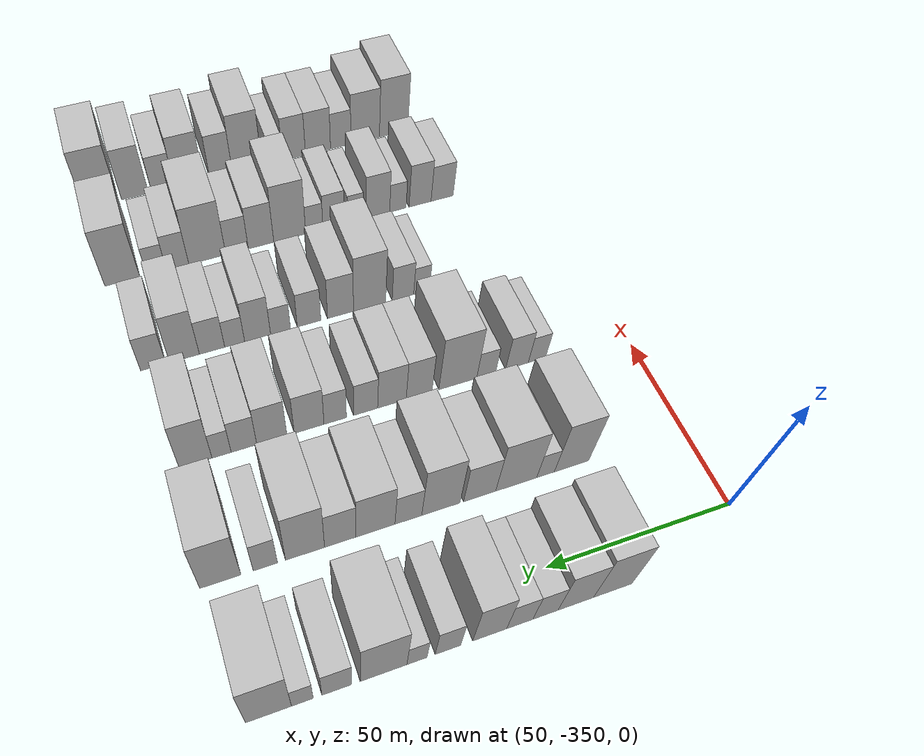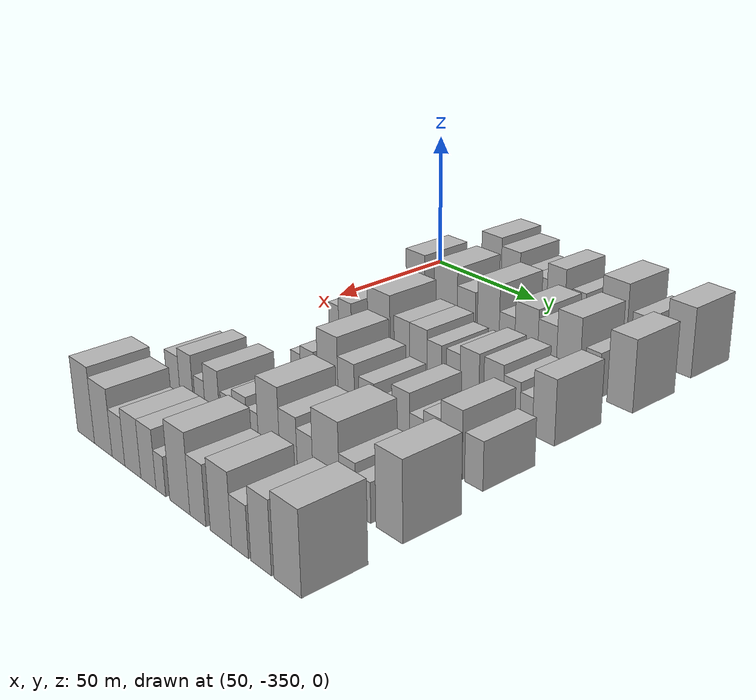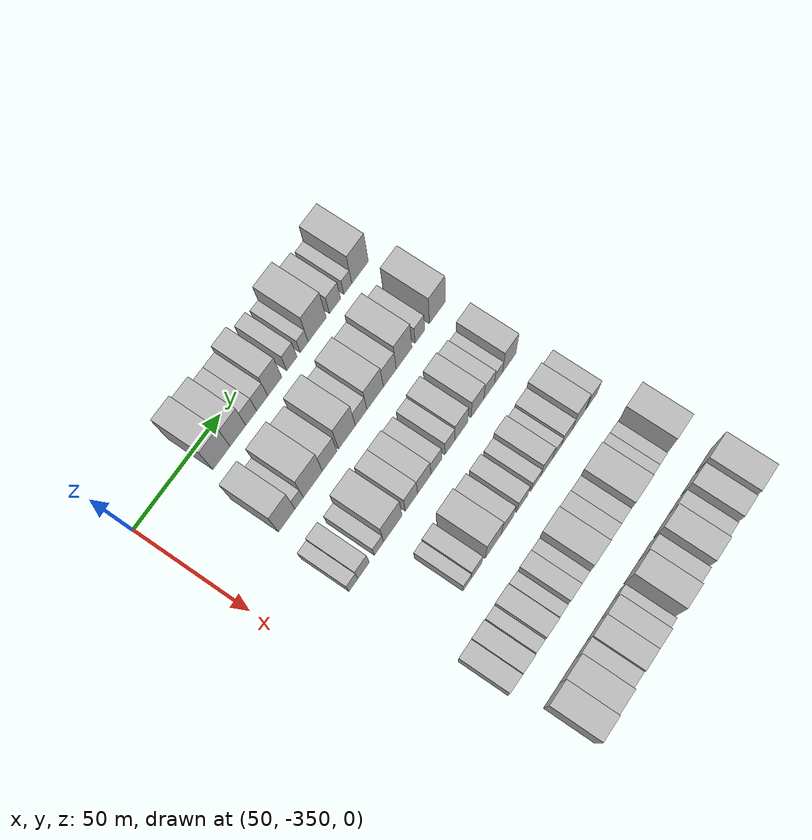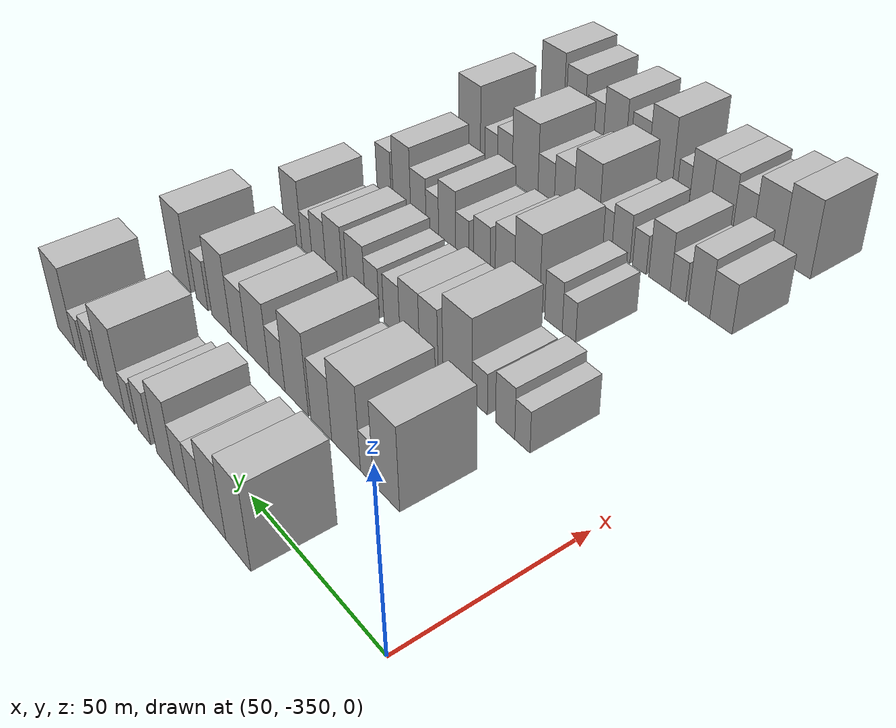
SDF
<sdf version="1.6">
 <world name="default">
  <model name="building_24">
   <static>1</static>
   <pose>50.0000 -312.4057 0 0.000000 0.000000 0.000000</pose>
   <link name="link">
    <pose>0 0 12.00 0 0 0</pose>
    <collision name="collision"><geometry><box><size>20.0000 10.1005 24.0000</size></box></geometry></collision>
    <visual name="visual">
     <cast_shadows>0</cast_shadows>
     <geometry><box><size>20.0000 10.1005 24.0000</size></box></geometry>
     <material>
      <script>
       <uri>model://HANNAS_wall/materials/scripts</uri>
       <uri>model://HANNAS_wall/materials/textures</uri>
       <name>vrc/HANNAS_wall</name>
      </script>
     </material>
    </visual>
   </link>
  </model>
  <model name="building_25">
   <static>1</static>
   <pose>50.0000 -302.7302 0 0.000000 0.000000 0.000000</pose>
   <link name="link">
    <pose>0 0 10.50 0 0 0</pose>
    <collision name="collision"><geometry><box><size>20.0000 9.2506 21.0000</size></box></geometry></collision>
    <visual name="visual">
     <cast_shadows>0</cast_shadows>
     <geometry><box><size>20.0000 9.2506 21.0000</size></box></geometry>
     <material>
      <script>
       <uri>model://HANNAS_wall/materials/scripts</uri>
       <uri>model://HANNAS_wall/materials/textures</uri>
       <name>vrc/HANNAS_wall</name>
      </script>
     </material>
    </visual>
   </link>
  </model>
  <model name="building_26">
   <static>1</static>
   <pose>50.0000 -294.8835 0 0.000000 0.000000 0.000000</pose>
   <link name="link">
    <pose>0 0 7.50 0 0 0</pose>
    <collision name="collision"><geometry><box><size>20.0000 6.4428 15.0000</size></box></geometry></collision>
    <visual name="visual">
     <cast_shadows>0</cast_shadows>
     <geometry><box><size>20.0000 6.4428 15.0000</size></box></geometry>
     <material>
      <script>
       <uri>model://HANNAS_wall/materials/scripts</uri>
       <uri>model://HANNAS_wall/materials/textures</uri>
       <name>vrc/HANNAS_wall</name>
      </script>
     </material>
    </visual>
   </link>
  </model>
  <model name="building_27">
   <static>1</static>
   <pose>50.0000 -288.3654 0 0.000000 0.000000 0.000000</pose>
   <link name="link">
    <pose>0 0 7.50 0 0 0</pose>
    <collision name="collision"><geometry><box><size>20.0000 6.5933 15.0000</size></box></geometry></collision>
    <visual name="visual">
     <cast_shadows>0</cast_shadows>
     <geometry><box><size>20.0000 6.5933 15.0000</size></box></geometry>
     <material>
      <script>
       <uri>model://HANNAS_wall/materials/scripts</uri>
       <uri>model://HANNAS_wall/materials/textures</uri>
       <name>vrc/HANNAS_wall</name>
      </script>
     </material>
    </visual>
   </link>
  </model>
  <model name="building_28">
   <static>1</static>
   <pose>50.0000 -280.8394 0 0.000000 0.000000 0.000000</pose>
   <link name="link">
    <pose>0 0 10.50 0 0 0</pose>
    <collision name="collision"><geometry><box><size>20.0000 8.4586 21.0000</size></box></geometry></collision>
    <visual name="visual">
     <cast_shadows>0</cast_shadows>
     <geometry><box><size>20.0000 8.4586 21.0000</size></box></geometry>
     <material>
      <script>
       <uri>model://HANNAS_wall/materials/scripts</uri>
       <uri>model://HANNAS_wall/materials/textures</uri>
       <name>vrc/HANNAS_wall</name>
      </script>
     </material>
    </visual>
   </link>
  </model>
  <model name="building_29">
   <static>1</static>
   <pose>50.0000 -270.5103 0 0.000000 0.000000 0.000000</pose>
   <link name="link">
    <pose>0 0 7.50 0 0 0</pose>
    <collision name="collision"><geometry><box><size>20.0000 6.1996 15.0000</size></box></geometry></collision>
    <visual name="visual">
     <cast_shadows>0</cast_shadows>
     <geometry><box><size>20.0000 6.1996 15.0000</size></box></geometry>
     <material>
      <script>
       <uri>model://HANNAS_wall/materials/scripts</uri>
       <uri>model://HANNAS_wall/materials/textures</uri>
       <name>vrc/HANNAS_wall</name>
      </script>
     </material>
    </visual>
   </link>
  </model>
  <model name="building_30">
   <static>1</static>
   <pose>50.0000 -262.9905 0 0.000000 0.000000 0.000000</pose>
   <link name="link">
    <pose>0 0 6.00 0 0 0</pose>
    <collision name="collision"><geometry><box><size>20.0000 4.8400 12.0000</size></box></geometry></collision>
    <visual name="visual">
     <cast_shadows>0</cast_shadows>
     <geometry><box><size>20.0000 4.8400 12.0000</size></box></geometry>
     <material>
      <script>
       <uri>model://HANNAS_wall/materials/scripts</uri>
       <uri>model://HANNAS_wall/materials/textures</uri>
       <name>vrc/HANNAS_wall</name>
      </script>
     </material>
    </visual>
   </link>
  </model>
  <model name="building_31">
   <static>1</static>
   <pose>50.0000 -255.0199 0 0.000000 0.000000 0.000000</pose>
   <link name="link">
    <pose>0 0 12.00 0 0 0</pose>
    <collision name="collision"><geometry><box><size>20.0000 11.1011 24.0000</size></box></geometry></collision>
    <visual name="visual">
     <cast_shadows>0</cast_shadows>
     <geometry><box><size>20.0000 11.1011 24.0000</size></box></geometry>
     <material>
      <script>
       <uri>model://HANNAS_wall/materials/scripts</uri>
       <uri>model://HANNAS_wall/materials/textures</uri>
       <name>vrc/HANNAS_wall</name>
      </script>
     </material>
    </visual>
   </link>
  </model>
  <model name="building_32">
   <static>1</static>
   <pose>50.0000 -243.9982 0 0.000000 0.000000 0.000000</pose>
   <link name="link">
    <pose>0 0 7.50 0 0 0</pose>
    <collision name="collision"><geometry><box><size>20.0000 6.9424 15.0000</size></box></geometry></collision>
    <visual name="visual">
     <cast_shadows>0</cast_shadows>
     <geometry><box><size>20.0000 6.9424 15.0000</size></box></geometry>
     <material>
      <script>
       <uri>model://HANNAS_wall/materials/scripts</uri>
       <uri>model://HANNAS_wall/materials/textures</uri>
       <name>vrc/HANNAS_wall</name>
      </script>
     </material>
    </visual>
   </link>
  </model>
  <model name="building_33">
   <static>1</static>
   <pose>50.0000 -236.0353 0 0.000000 0.000000 0.000000</pose>
   <link name="link">
    <pose>0 0 6.00 0 0 0</pose>
    <collision name="collision"><geometry><box><size>20.0000 4.9834 12.0000</size></box></geometry></collision>
    <visual name="visual">
     <cast_shadows>0</cast_shadows>
     <geometry><box><size>20.0000 4.9834 12.0000</size></box></geometry>
     <material>
      <script>
       <uri>model://HANNAS_wall/materials/scripts</uri>
       <uri>model://HANNAS_wall/materials/textures</uri>
       <name>vrc/HANNAS_wall</name>
      </script>
     </material>
    </visual>
   </link>
  </model>
  <model name="building_34">
   <static>1</static>
   <pose>50.0000 -228.3454 0 0.000000 0.000000 0.000000</pose>
   <link name="link">
    <pose>0 0 12.00 0 0 0</pose>
    <collision name="collision"><geometry><box><size>20.0000 10.3963 24.0000</size></box></geometry></collision>
    <visual name="visual">
     <cast_shadows>0</cast_shadows>
     <geometry><box><size>20.0000 10.3963 24.0000</size></box></geometry>
     <material>
      <script>
       <uri>model://HANNAS_wall/materials/scripts</uri>
       <uri>model://HANNAS_wall/materials/textures</uri>
       <name>vrc/HANNAS_wall</name>
      </script>
     </material>
    </visual>
   </link>
  </model>
  <model name="building_143">
   <static>1</static>
   <pose>82.0000 -317.5623 0 0.000000 0.000000 0.000000</pose>
   <link name="link">
    <pose>0 0 12.00 0 0 0</pose>
    <collision name="collision"><geometry><box><size>20.0000 9.7153 24.0000</size></box></geometry></collision>
    <visual name="visual">
     <cast_shadows>0</cast_shadows>
     <geometry><box><size>20.0000 9.7153 24.0000</size></box></geometry>
     <material>
      <script>
       <uri>model://HANNAS_wall/materials/scripts</uri>
       <uri>model://HANNAS_wall/materials/textures</uri>
       <name>vrc/HANNAS_wall</name>
      </script>
     </material>
    </visual>
   </link>
  </model>
  <model name="building_144">
   <static>1</static>
   <pose>82.0000 -310.2401 0 0.000000 0.000000 0.000000</pose>
   <link name="link">
    <pose>0 0 6.00 0 0 0</pose>
    <collision name="collision"><geometry><box><size>20.0000 4.9292 12.0000</size></box></geometry></collision>
    <visual name="visual">
     <cast_shadows>0</cast_shadows>
     <geometry><box><size>20.0000 4.9292 12.0000</size></box></geometry>
     <material>
      <script>
       <uri>model://HANNAS_wall/materials/scripts</uri>
       <uri>model://HANNAS_wall/materials/textures</uri>
       <name>vrc/HANNAS_wall</name>
      </script>
     </material>
    </visual>
   </link>
  </model>
  <model name="building_145">
   <static>1</static>
   <pose>82.0000 -302.0967 0 0.000000 0.000000 0.000000</pose>
   <link name="link">
    <pose>0 0 12.00 0 0 0</pose>
    <collision name="collision"><geometry><box><size>20.0000 11.3575 24.0000</size></box></geometry></collision>
    <visual name="visual">
     <cast_shadows>0</cast_shadows>
     <geometry><box><size>20.0000 11.3575 24.0000</size></box></geometry>
     <material>
      <script>
       <uri>model://HANNAS_wall/materials/scripts</uri>
       <uri>model://HANNAS_wall/materials/textures</uri>
       <name>vrc/HANNAS_wall</name>
      </script>
     </material>
    </visual>
   </link>
  </model>
  <model name="building_146">
   <static>1</static>
   <pose>82.0000 -292.0707 0 0.000000 0.000000 0.000000</pose>
   <link name="link">
    <pose>0 0 9.00 0 0 0</pose>
    <collision name="collision"><geometry><box><size>20.0000 8.6945 18.0000</size></box></geometry></collision>
    <visual name="visual">
     <cast_shadows>0</cast_shadows>
     <geometry><box><size>20.0000 8.6945 18.0000</size></box></geometry>
     <material>
      <script>
       <uri>model://HANNAS_wall/materials/scripts</uri>
       <uri>model://HANNAS_wall/materials/textures</uri>
       <name>vrc/HANNAS_wall</name>
      </script>
     </material>
    </visual>
   </link>
  </model>
  <model name="building_147">
   <static>1</static>
   <pose>82.0000 -281.6274 0 0.000000 0.000000 0.000000</pose>
   <link name="link">
    <pose>0 0 12.00 0 0 0</pose>
    <collision name="collision"><geometry><box><size>20.0000 10.1922 24.0000</size></box></geometry></collision>
    <visual name="visual">
     <cast_shadows>0</cast_shadows>
     <geometry><box><size>20.0000 10.1922 24.0000</size></box></geometry>
     <material>
      <script>
       <uri>model://HANNAS_wall/materials/scripts</uri>
       <uri>model://HANNAS_wall/materials/textures</uri>
       <name>vrc/HANNAS_wall</name>
      </script>
     </material>
    </visual>
   </link>
  </model>
  <model name="building_148">
   <static>1</static>
   <pose>82.0000 -272.9919 0 0.000000 0.000000 0.000000</pose>
   <link name="link">
    <pose>0 0 7.50 0 0 0</pose>
    <collision name="collision"><geometry><box><size>20.0000 7.0788 15.0000</size></box></geometry></collision>
    <visual name="visual">
     <cast_shadows>0</cast_shadows>
     <geometry><box><size>20.0000 7.0788 15.0000</size></box></geometry>
     <material>
      <script>
       <uri>model://HANNAS_wall/materials/scripts</uri>
       <uri>model://HANNAS_wall/materials/textures</uri>
       <name>vrc/HANNAS_wall</name>
      </script>
     </material>
    </visual>
   </link>
  </model>
  <model name="building_149">
   <static>1</static>
   <pose>82.0000 -264.3902 0 0.000000 0.000000 0.000000</pose>
   <link name="link">
    <pose>0 0 10.50 0 0 0</pose>
    <collision name="collision"><geometry><box><size>20.0000 10.1245 21.0000</size></box></geometry></collision>
    <visual name="visual">
     <cast_shadows>0</cast_shadows>
     <geometry><box><size>20.0000 10.1245 21.0000</size></box></geometry>
     <material>
      <script>
       <uri>model://HANNAS_wall/materials/scripts</uri>
       <uri>model://HANNAS_wall/materials/textures</uri>
       <name>vrc/HANNAS_wall</name>
      </script>
     </material>
    </visual>
   </link>
  </model>
  <model name="building_150">
   <static>1</static>
   <pose>82.0000 -255.3238 0 0.000000 0.000000 0.000000</pose>
   <link name="link">
    <pose>0 0 9.00 0 0 0</pose>
    <collision name="collision"><geometry><box><size>20.0000 8.0083 18.0000</size></box></geometry></collision>
    <visual name="visual">
     <cast_shadows>0</cast_shadows>
     <geometry><box><size>20.0000 8.0083 18.0000</size></box></geometry>
     <material>
      <script>
       <uri>model://HANNAS_wall/materials/scripts</uri>
       <uri>model://HANNAS_wall/materials/textures</uri>
       <name>vrc/HANNAS_wall</name>
      </script>
     </material>
    </visual>
   </link>
  </model>
  <model name="building_151">
   <static>1</static>
   <pose>82.0000 -246.4060 0 0.000000 0.000000 0.000000</pose>
   <link name="link">
    <pose>0 0 12.00 0 0 0</pose>
    <collision name="collision"><geometry><box><size>20.0000 9.8274 24.0000</size></box></geometry></collision>
    <visual name="visual">
     <cast_shadows>0</cast_shadows>
     <geometry><box><size>20.0000 9.8274 24.0000</size></box></geometry>
     <material>
      <script>
       <uri>model://HANNAS_wall/materials/scripts</uri>
       <uri>model://HANNAS_wall/materials/textures</uri>
       <name>vrc/HANNAS_wall</name>
      </script>
     </material>
    </visual>
   </link>
  </model>
  <model name="building_152">
   <static>1</static>
   <pose>82.0000 -236.4769 0 0.000000 0.000000 0.000000</pose>
   <link name="link">
    <pose>0 0 7.50 0 0 0</pose>
    <collision name="collision"><geometry><box><size>20.0000 6.0309 15.0000</size></box></geometry></collision>
    <visual name="visual">
     <cast_shadows>0</cast_shadows>
     <geometry><box><size>20.0000 6.0309 15.0000</size></box></geometry>
     <material>
      <script>
       <uri>model://HANNAS_wall/materials/scripts</uri>
       <uri>model://HANNAS_wall/materials/textures</uri>
       <name>vrc/HANNAS_wall</name>
      </script>
     </material>
    </visual>
   </link>
  </model>
  <model name="building_153">
   <static>1</static>
   <pose>82.0000 -225.4498 0 0.000000 0.000000 0.000000</pose>
   <link name="link">
    <pose>0 0 12.00 0 0 0</pose>
    <collision name="collision"><geometry><box><size>20.0000 10.0232 24.0000</size></box></geometry></collision>
    <visual name="visual">
     <cast_shadows>0</cast_shadows>
     <geometry><box><size>20.0000 10.0232 24.0000</size></box></geometry>
     <material>
      <script>
       <uri>model://HANNAS_wall/materials/scripts</uri>
       <uri>model://HANNAS_wall/materials/textures</uri>
       <name>vrc/HANNAS_wall</name>
      </script>
     </material>
    </visual>
   </link>
  </model>
  <model name="building_265">
   <static>1</static>
   <pose>114.0000 -322.9543 0 0.000000 0.000000 0.000000</pose>
   <link name="link">
    <pose>0 0 6.00 0 0 0</pose>
    <collision name="collision"><geometry><box><size>20.0000 5.2544 12.0000</size></box></geometry></collision>
    <visual name="visual">
     <cast_shadows>0</cast_shadows>
     <geometry><box><size>20.0000 5.2544 12.0000</size></box></geometry>
     <material>
      <script>
       <uri>model://HANNAS_wall/materials/scripts</uri>
       <uri>model://HANNAS_wall/materials/textures</uri>
       <name>vrc/HANNAS_wall</name>
      </script>
     </material>
    </visual>
   </link>
  </model>
  <model name="building_266">
   <static>1</static>
   <pose>114.0000 -316.9346 0 0.000000 0.000000 0.000000</pose>
   <link name="link">
    <pose>0 0 7.50 0 0 0</pose>
    <collision name="collision"><geometry><box><size>20.0000 6.7850 15.0000</size></box></geometry></collision>
    <visual name="visual">
     <cast_shadows>0</cast_shadows>
     <geometry><box><size>20.0000 6.7850 15.0000</size></box></geometry>
     <material>
      <script>
       <uri>model://HANNAS_wall/materials/scripts</uri>
       <uri>model://HANNAS_wall/materials/textures</uri>
       <name>vrc/HANNAS_wall</name>
      </script>
     </material>
    </visual>
   </link>
  </model>
  <model name="building_267">
   <static>1</static>
   <pose>114.0000 -307.7414 0 0.000000 0.000000 0.000000</pose>
   <link name="link">
    <pose>0 0 6.00 0 0 0</pose>
    <collision name="collision"><geometry><box><size>20.0000 5.6015 12.0000</size></box></geometry></collision>
    <visual name="visual">
     <cast_shadows>0</cast_shadows>
     <geometry><box><size>20.0000 5.6015 12.0000</size></box></geometry>
     <material>
      <script>
       <uri>model://HANNAS_wall/materials/scripts</uri>
       <uri>model://HANNAS_wall/materials/textures</uri>
       <name>vrc/HANNAS_wall</name>
      </script>
     </material>
    </visual>
   </link>
  </model>
  <model name="building_268">
   <static>1</static>
   <pose>114.0000 -299.3975 0 0.000000 0.000000 0.000000</pose>
   <link name="link">
    <pose>0 0 12.00 0 0 0</pose>
    <collision name="collision"><geometry><box><size>20.0000 11.0861 24.0000</size></box></geometry></collision>
    <visual name="visual">
     <cast_shadows>0</cast_shadows>
     <geometry><box><size>20.0000 11.0861 24.0000</size></box></geometry>
     <material>
      <script>
       <uri>model://HANNAS_wall/materials/scripts</uri>
       <uri>model://HANNAS_wall/materials/textures</uri>
       <name>vrc/HANNAS_wall</name>
      </script>
     </material>
    </visual>
   </link>
  </model>
  <model name="building_269">
   <static>1</static>
   <pose>114.0000 -288.1318 0 0.000000 0.000000 0.000000</pose>
   <link name="link">
    <pose>0 0 9.00 0 0 0</pose>
    <collision name="collision"><geometry><box><size>20.0000 7.4454 18.0000</size></box></geometry></collision>
    <visual name="visual">
     <cast_shadows>0</cast_shadows>
     <geometry><box><size>20.0000 7.4454 18.0000</size></box></geometry>
     <material>
      <script>
       <uri>model://HANNAS_wall/materials/scripts</uri>
       <uri>model://HANNAS_wall/materials/textures</uri>
       <name>vrc/HANNAS_wall</name>
      </script>
     </material>
    </visual>
   </link>
  </model>
  <model name="building_270">
   <static>1</static>
   <pose>114.0000 -280.3580 0 0.000000 0.000000 0.000000</pose>
   <link name="link">
    <pose>0 0 9.00 0 0 0</pose>
    <collision name="collision"><geometry><box><size>20.0000 8.1021 18.0000</size></box></geometry></collision>
    <visual name="visual">
     <cast_shadows>0</cast_shadows>
     <geometry><box><size>20.0000 8.1021 18.0000</size></box></geometry>
     <material>
      <script>
       <uri>model://HANNAS_wall/materials/scripts</uri>
       <uri>model://HANNAS_wall/materials/textures</uri>
       <name>vrc/HANNAS_wall</name>
      </script>
     </material>
    </visual>
   </link>
  </model>
  <model name="building_271">
   <static>1</static>
   <pose>114.0000 -272.9247 0 0.000000 0.000000 0.000000</pose>
   <link name="link">
    <pose>0 0 7.50 0 0 0</pose>
    <collision name="collision"><geometry><box><size>20.0000 6.7646 15.0000</size></box></geometry></collision>
    <visual name="visual">
     <cast_shadows>0</cast_shadows>
     <geometry><box><size>20.0000 6.7646 15.0000</size></box></geometry>
     <material>
      <script>
       <uri>model://HANNAS_wall/materials/scripts</uri>
       <uri>model://HANNAS_wall/materials/textures</uri>
       <name>vrc/HANNAS_wall</name>
      </script>
     </material>
    </visual>
   </link>
  </model>
  <model name="building_272">
   <static>1</static>
   <pose>114.0000 -264.4371 0 0.000000 0.000000 0.000000</pose>
   <link name="link">
    <pose>0 0 7.50 0 0 0</pose>
    <collision name="collision"><geometry><box><size>20.0000 6.2105 15.0000</size></box></geometry></collision>
    <visual name="visual">
     <cast_shadows>0</cast_shadows>
     <geometry><box><size>20.0000 6.2105 15.0000</size></box></geometry>
     <material>
      <script>
       <uri>model://HANNAS_wall/materials/scripts</uri>
       <uri>model://HANNAS_wall/materials/textures</uri>
       <name>vrc/HANNAS_wall</name>
      </script>
     </material>
    </visual>
   </link>
  </model>
  <model name="building_273">
   <static>1</static>
   <pose>114.0000 -257.2530 0 0.000000 0.000000 0.000000</pose>
   <link name="link">
    <pose>0 0 9.00 0 0 0</pose>
    <collision name="collision"><geometry><box><size>20.0000 8.1578 18.0000</size></box></geometry></collision>
    <visual name="visual">
     <cast_shadows>0</cast_shadows>
     <geometry><box><size>20.0000 8.1578 18.0000</size></box></geometry>
     <material>
      <script>
       <uri>model://HANNAS_wall/materials/scripts</uri>
       <uri>model://HANNAS_wall/materials/textures</uri>
       <name>vrc/HANNAS_wall</name>
      </script>
     </material>
    </visual>
   </link>
  </model>
  <model name="building_274">
   <static>1</static>
   <pose>114.0000 -247.1167 0 0.000000 0.000000 0.000000</pose>
   <link name="link">
    <pose>0 0 9.00 0 0 0</pose>
    <collision name="collision"><geometry><box><size>20.0000 8.1148 18.0000</size></box></geometry></collision>
    <visual name="visual">
     <cast_shadows>0</cast_shadows>
     <geometry><box><size>20.0000 8.1148 18.0000</size></box></geometry>
     <material>
      <script>
       <uri>model://HANNAS_wall/materials/scripts</uri>
       <uri>model://HANNAS_wall/materials/textures</uri>
       <name>vrc/HANNAS_wall</name>
      </script>
     </material>
    </visual>
   </link>
  </model>
  <model name="building_275">
   <static>1</static>
   <pose>114.0000 -239.6387 0 0.000000 0.000000 0.000000</pose>
   <link name="link">
    <pose>0 0 7.50 0 0 0</pose>
    <collision name="collision"><geometry><box><size>20.0000 6.8412 15.0000</size></box></geometry></collision>
    <visual name="visual">
     <cast_shadows>0</cast_shadows>
     <geometry><box><size>20.0000 6.8412 15.0000</size></box></geometry>
     <material>
      <script>
       <uri>model://HANNAS_wall/materials/scripts</uri>
       <uri>model://HANNAS_wall/materials/textures</uri>
       <name>vrc/HANNAS_wall</name>
      </script>
     </material>
    </visual>
   </link>
  </model>
  <model name="building_276">
   <static>1</static>
   <pose>114.0000 -233.6750 0 0.000000 0.000000 0.000000</pose>
   <link name="link">
    <pose>0 0 6.00 0 0 0</pose>
    <collision name="collision"><geometry><box><size>20.0000 5.0861 12.0000</size></box></geometry></collision>
    <visual name="visual">
     <cast_shadows>0</cast_shadows>
     <geometry><box><size>20.0000 5.0861 12.0000</size></box></geometry>
     <material>
      <script>
       <uri>model://HANNAS_wall/materials/scripts</uri>
       <uri>model://HANNAS_wall/materials/textures</uri>
       <name>vrc/HANNAS_wall</name>
      </script>
     </material>
    </visual>
   </link>
  </model>
  <model name="building_277">
   <static>1</static>
   <pose>114.0000 -226.8258 0 0.000000 0.000000 0.000000</pose>
   <link name="link">
    <pose>0 0 10.50 0 0 0</pose>
    <collision name="collision"><geometry><box><size>20.0000 8.6123 21.0000</size></box></geometry></collision>
    <visual name="visual">
     <cast_shadows>0</cast_shadows>
     <geometry><box><size>20.0000 8.6123 21.0000</size></box></geometry>
     <material>
      <script>
       <uri>model://HANNAS_wall/materials/scripts</uri>
       <uri>model://HANNAS_wall/materials/textures</uri>
       <name>vrc/HANNAS_wall</name>
      </script>
     </material>
    </visual>
   </link>
  </model>
  <model name="building_390">
   <static>1</static>
   <pose>146.0000 -301.2112 0 0.000000 0.000000 0.000000</pose>
   <link name="link">
    <pose>0 0 6.00 0 0 0</pose>
    <collision name="collision"><geometry><box><size>20.0000 4.9114 12.0000</size></box></geometry></collision>
    <visual name="visual">
     <cast_shadows>0</cast_shadows>
     <geometry><box><size>20.0000 4.9114 12.0000</size></box></geometry>
     <material>
      <script>
       <uri>model://HANNAS_wall/materials/scripts</uri>
       <uri>model://HANNAS_wall/materials/textures</uri>
       <name>vrc/HANNAS_wall</name>
      </script>
     </material>
    </visual>
   </link>
  </model>
  <model name="building_391">
   <static>1</static>
   <pose>146.0000 -295.4449 0 0.000000 0.000000 0.000000</pose>
   <link name="link">
    <pose>0 0 7.50 0 0 0</pose>
    <collision name="collision"><geometry><box><size>20.0000 6.6212 15.0000</size></box></geometry></collision>
    <visual name="visual">
     <cast_shadows>0</cast_shadows>
     <geometry><box><size>20.0000 6.6212 15.0000</size></box></geometry>
     <material>
      <script>
       <uri>model://HANNAS_wall/materials/scripts</uri>
       <uri>model://HANNAS_wall/materials/textures</uri>
       <name>vrc/HANNAS_wall</name>
      </script>
     </material>
    </visual>
   </link>
  </model>
  <model name="building_392">
   <static>1</static>
   <pose>146.0000 -285.2255 0 0.000000 0.000000 0.000000</pose>
   <link name="link">
    <pose>0 0 12.00 0 0 0</pose>
    <collision name="collision"><geometry><box><size>20.0000 9.8176 24.0000</size></box></geometry></collision>
    <visual name="visual">
     <cast_shadows>0</cast_shadows>
     <geometry><box><size>20.0000 9.8176 24.0000</size></box></geometry>
     <material>
      <script>
       <uri>model://HANNAS_wall/materials/scripts</uri>
       <uri>model://HANNAS_wall/materials/textures</uri>
       <name>vrc/HANNAS_wall</name>
      </script>
     </material>
    </visual>
   </link>
  </model>
  <model name="building_393">
   <static>1</static>
   <pose>146.0000 -276.4259 0 0.000000 0.000000 0.000000</pose>
   <link name="link">
    <pose>0 0 9.00 0 0 0</pose>
    <collision name="collision"><geometry><box><size>20.0000 7.7818 18.0000</size></box></geometry></collision>
    <visual name="visual">
     <cast_shadows>0</cast_shadows>
     <geometry><box><size>20.0000 7.7818 18.0000</size></box></geometry>
     <material>
      <script>
       <uri>model://HANNAS_wall/materials/scripts</uri>
       <uri>model://HANNAS_wall/materials/textures</uri>
       <name>vrc/HANNAS_wall</name>
      </script>
     </material>
    </visual>
   </link>
  </model>
  <model name="building_394">
   <static>1</static>
   <pose>146.0000 -267.0439 0 0.000000 0.000000 0.000000</pose>
   <link name="link">
    <pose>0 0 7.50 0 0 0</pose>
    <collision name="collision"><geometry><box><size>20.0000 6.9822 15.0000</size></box></geometry></collision>
    <visual name="visual">
     <cast_shadows>0</cast_shadows>
     <geometry><box><size>20.0000 6.9822 15.0000</size></box></geometry>
     <material>
      <script>
       <uri>model://HANNAS_wall/materials/scripts</uri>
       <uri>model://HANNAS_wall/materials/textures</uri>
       <name>vrc/HANNAS_wall</name>
      </script>
     </material>
    </visual>
   </link>
  </model>
  <model name="building_395">
   <static>1</static>
   <pose>146.0000 -258.6521 0 0.000000 0.000000 0.000000</pose>
   <link name="link">
    <pose>0 0 6.00 0 0 0</pose>
    <collision name="collision"><geometry><box><size>20.0000 5.8013 12.0000</size></box></geometry></collision>
    <visual name="visual">
     <cast_shadows>0</cast_shadows>
     <geometry><box><size>20.0000 5.8013 12.0000</size></box></geometry>
     <material>
      <script>
       <uri>model://HANNAS_wall/materials/scripts</uri>
       <uri>model://HANNAS_wall/materials/textures</uri>
       <name>vrc/HANNAS_wall</name>
      </script>
     </material>
    </visual>
   </link>
  </model>
  <model name="building_396">
   <static>1</static>
   <pose>146.0000 -251.9757 0 0.000000 0.000000 0.000000</pose>
   <link name="link">
    <pose>0 0 9.00 0 0 0</pose>
    <collision name="collision"><geometry><box><size>20.0000 7.5514 18.0000</size></box></geometry></collision>
    <visual name="visual">
     <cast_shadows>0</cast_shadows>
     <geometry><box><size>20.0000 7.5514 18.0000</size></box></geometry>
     <material>
      <script>
       <uri>model://HANNAS_wall/materials/scripts</uri>
       <uri>model://HANNAS_wall/materials/textures</uri>
       <name>vrc/HANNAS_wall</name>
      </script>
     </material>
    </visual>
   </link>
  </model>
  <model name="building_397">
   <static>1</static>
   <pose>146.0000 -245.3394 0 0.000000 0.000000 0.000000</pose>
   <link name="link">
    <pose>0 0 6.00 0 0 0</pose>
    <collision name="collision"><geometry><box><size>20.0000 5.7212 12.0000</size></box></geometry></collision>
    <visual name="visual">
     <cast_shadows>0</cast_shadows>
     <geometry><box><size>20.0000 5.7212 12.0000</size></box></geometry>
     <material>
      <script>
       <uri>model://HANNAS_wall/materials/scripts</uri>
       <uri>model://HANNAS_wall/materials/textures</uri>
       <name>vrc/HANNAS_wall</name>
      </script>
     </material>
    </visual>
   </link>
  </model>
  <model name="building_398">
   <static>1</static>
   <pose>146.0000 -238.8795 0 0.000000 0.000000 0.000000</pose>
   <link name="link">
    <pose>0 0 7.50 0 0 0</pose>
    <collision name="collision"><geometry><box><size>20.0000 7.1986 15.0000</size></box></geometry></collision>
    <visual name="visual">
     <cast_shadows>0</cast_shadows>
     <geometry><box><size>20.0000 7.1986 15.0000</size></box></geometry>
     <material>
      <script>
       <uri>model://HANNAS_wall/materials/scripts</uri>
       <uri>model://HANNAS_wall/materials/textures</uri>
       <name>vrc/HANNAS_wall</name>
      </script>
     </material>
    </visual>
   </link>
  </model>
  <model name="building_399">
   <static>1</static>
   <pose>146.0000 -231.0682 0 0.000000 0.000000 0.000000</pose>
   <link name="link">
    <pose>0 0 10.50 0 0 0</pose>
    <collision name="collision"><geometry><box><size>20.0000 8.4240 21.0000</size></box></geometry></collision>
    <visual name="visual">
     <cast_shadows>0</cast_shadows>
     <geometry><box><size>20.0000 8.4240 21.0000</size></box></geometry>
     <material>
      <script>
       <uri>model://HANNAS_wall/materials/scripts</uri>
       <uri>model://HANNAS_wall/materials/textures</uri>
       <name>vrc/HANNAS_wall</name>
      </script>
     </material>
    </visual>
   </link>
  </model>
  <model name="building_400">
   <static>1</static>
   <pose>146.0000 -222.3426 0 0.000000 0.000000 0.000000</pose>
   <link name="link">
    <pose>0 0 7.50 0 0 0</pose>
    <collision name="collision"><geometry><box><size>20.0000 7.0273 15.0000</size></box></geometry></collision>
    <visual name="visual">
     <cast_shadows>0</cast_shadows>
     <geometry><box><size>20.0000 7.0273 15.0000</size></box></geometry>
     <material>
      <script>
       <uri>model://HANNAS_wall/materials/scripts</uri>
       <uri>model://HANNAS_wall/materials/textures</uri>
       <name>vrc/HANNAS_wall</name>
      </script>
     </material>
    </visual>
   </link>
  </model>
  <model name="building_506">
   <static>1</static>
   <pose>178.0000 -320.4967 0 0.000000 0.000000 0.000000</pose>
   <link name="link">
    <pose>0 0 7.50 0 0 0</pose>
    <collision name="collision"><geometry><box><size>20.0000 7.4375 15.0000</size></box></geometry></collision>
    <visual name="visual">
     <cast_shadows>0</cast_shadows>
     <geometry><box><size>20.0000 7.4375 15.0000</size></box></geometry>
     <material>
      <script>
       <uri>model://HANNAS_wall/materials/scripts</uri>
       <uri>model://HANNAS_wall/materials/textures</uri>
       <name>vrc/HANNAS_wall</name>
      </script>
     </material>
    </visual>
   </link>
  </model>
  <model name="building_507">
   <static>1</static>
   <pose>178.0000 -313.0997 0 0.000000 0.000000 0.000000</pose>
   <link name="link">
    <pose>0 0 9.00 0 0 0</pose>
    <collision name="collision"><geometry><box><size>20.0000 7.3565 18.0000</size></box></geometry></collision>
    <visual name="visual">
     <cast_shadows>0</cast_shadows>
     <geometry><box><size>20.0000 7.3565 18.0000</size></box></geometry>
     <material>
      <script>
       <uri>model://HANNAS_wall/materials/scripts</uri>
       <uri>model://HANNAS_wall/materials/textures</uri>
       <name>vrc/HANNAS_wall</name>
      </script>
     </material>
    </visual>
   </link>
  </model>
  <model name="building_508">
   <static>1</static>
   <pose>178.0000 -305.7148 0 0.000000 0.000000 0.000000</pose>
   <link name="link">
    <pose>0 0 6.00 0 0 0</pose>
    <collision name="collision"><geometry><box><size>20.0000 5.4133 12.0000</size></box></geometry></collision>
    <visual name="visual">
     <cast_shadows>0</cast_shadows>
     <geometry><box><size>20.0000 5.4133 12.0000</size></box></geometry>
     <material>
      <script>
       <uri>model://HANNAS_wall/materials/scripts</uri>
       <uri>model://HANNAS_wall/materials/textures</uri>
       <name>vrc/HANNAS_wall</name>
      </script>
     </material>
    </visual>
   </link>
  </model>
  <model name="building_509">
   <static>1</static>
   <pose>178.0000 -299.1425 0 0.000000 0.000000 0.000000</pose>
   <link name="link">
    <pose>0 0 9.00 0 0 0</pose>
    <collision name="collision"><geometry><box><size>20.0000 7.7314 18.0000</size></box></geometry></collision>
    <visual name="visual">
     <cast_shadows>0</cast_shadows>
     <geometry><box><size>20.0000 7.7314 18.0000</size></box></geometry>
     <material>
      <script>
       <uri>model://HANNAS_wall/materials/scripts</uri>
       <uri>model://HANNAS_wall/materials/textures</uri>
       <name>vrc/HANNAS_wall</name>
      </script>
     </material>
    </visual>
   </link>
  </model>
  <model name="building_510">
   <static>1</static>
   <pose>178.0000 -291.7333 0 0.000000 0.000000 0.000000</pose>
   <link name="link">
    <pose>0 0 6.00 0 0 0</pose>
    <collision name="collision"><geometry><box><size>20.0000 5.0869 12.0000</size></box></geometry></collision>
    <visual name="visual">
     <cast_shadows>0</cast_shadows>
     <geometry><box><size>20.0000 5.0869 12.0000</size></box></geometry>
     <material>
      <script>
       <uri>model://HANNAS_wall/materials/scripts</uri>
       <uri>model://HANNAS_wall/materials/textures</uri>
       <name>vrc/HANNAS_wall</name>
      </script>
     </material>
    </visual>
   </link>
  </model>
  <model name="building_511">
   <static>1</static>
   <pose>178.0000 -284.7449 0 0.000000 0.000000 0.000000</pose>
   <link name="link">
    <pose>0 0 7.50 0 0 0</pose>
    <collision name="collision"><geometry><box><size>20.0000 6.8898 15.0000</size></box></geometry></collision>
    <visual name="visual">
     <cast_shadows>0</cast_shadows>
     <geometry><box><size>20.0000 6.8898 15.0000</size></box></geometry>
     <material>
      <script>
       <uri>model://HANNAS_wall/materials/scripts</uri>
       <uri>model://HANNAS_wall/materials/textures</uri>
       <name>vrc/HANNAS_wall</name>
      </script>
     </material>
    </visual>
   </link>
  </model>
  <model name="building_512">
   <static>1</static>
   <pose>178.0000 -278.5636 0 0.000000 0.000000 0.000000</pose>
   <link name="link">
    <pose>0 0 6.00 0 0 0</pose>
    <collision name="collision"><geometry><box><size>20.0000 5.4729 12.0000</size></box></geometry></collision>
    <visual name="visual">
     <cast_shadows>0</cast_shadows>
     <geometry><box><size>20.0000 5.4729 12.0000</size></box></geometry>
     <material>
      <script>
       <uri>model://HANNAS_wall/materials/scripts</uri>
       <uri>model://HANNAS_wall/materials/textures</uri>
       <name>vrc/HANNAS_wall</name>
      </script>
     </material>
    </visual>
   </link>
  </model>
  <model name="building_513">
   <static>1</static>
   <pose>178.0000 -270.7754 0 0.000000 0.000000 0.000000</pose>
   <link name="link">
    <pose>0 0 12.00 0 0 0</pose>
    <collision name="collision"><geometry><box><size>20.0000 10.1035 24.0000</size></box></geometry></collision>
    <visual name="visual">
     <cast_shadows>0</cast_shadows>
     <geometry><box><size>20.0000 10.1035 24.0000</size></box></geometry>
     <material>
      <script>
       <uri>model://HANNAS_wall/materials/scripts</uri>
       <uri>model://HANNAS_wall/materials/textures</uri>
       <name>vrc/HANNAS_wall</name>
      </script>
     </material>
    </visual>
   </link>
  </model>
  <model name="building_514">
   <static>1</static>
   <pose>178.0000 -261.7541 0 0.000000 0.000000 0.000000</pose>
   <link name="link">
    <pose>0 0 9.00 0 0 0</pose>
    <collision name="collision"><geometry><box><size>20.0000 7.9390 18.0000</size></box></geometry></collision>
    <visual name="visual">
     <cast_shadows>0</cast_shadows>
     <geometry><box><size>20.0000 7.9390 18.0000</size></box></geometry>
     <material>
      <script>
       <uri>model://HANNAS_wall/materials/scripts</uri>
       <uri>model://HANNAS_wall/materials/textures</uri>
       <name>vrc/HANNAS_wall</name>
      </script>
     </material>
    </visual>
   </link>
  </model>
  <model name="building_515">
   <static>1</static>
   <pose>178.0000 -254.2976 0 0.000000 0.000000 0.000000</pose>
   <link name="link">
    <pose>0 0 7.50 0 0 0</pose>
    <collision name="collision"><geometry><box><size>20.0000 6.9741 15.0000</size></box></geometry></collision>
    <visual name="visual">
     <cast_shadows>0</cast_shadows>
     <geometry><box><size>20.0000 6.9741 15.0000</size></box></geometry>
     <material>
      <script>
       <uri>model://HANNAS_wall/materials/scripts</uri>
       <uri>model://HANNAS_wall/materials/textures</uri>
       <name>vrc/HANNAS_wall</name>
      </script>
     </material>
    </visual>
   </link>
  </model>
  <model name="building_516">
   <static>1</static>
   <pose>178.0000 -245.1701 0 0.000000 0.000000 0.000000</pose>
   <link name="link">
    <pose>0 0 12.00 0 0 0</pose>
    <collision name="collision"><geometry><box><size>20.0000 11.2810 24.0000</size></box></geometry></collision>
    <visual name="visual">
     <cast_shadows>0</cast_shadows>
     <geometry><box><size>20.0000 11.2810 24.0000</size></box></geometry>
     <material>
      <script>
       <uri>model://HANNAS_wall/materials/scripts</uri>
       <uri>model://HANNAS_wall/materials/textures</uri>
       <name>vrc/HANNAS_wall</name>
      </script>
     </material>
    </visual>
   </link>
  </model>
  <model name="building_517">
   <static>1</static>
   <pose>178.0000 -236.1378 0 0.000000 0.000000 0.000000</pose>
   <link name="link">
    <pose>0 0 7.50 0 0 0</pose>
    <collision name="collision"><geometry><box><size>20.0000 6.7835 15.0000</size></box></geometry></collision>
    <visual name="visual">
     <cast_shadows>0</cast_shadows>
     <geometry><box><size>20.0000 6.7835 15.0000</size></box></geometry>
     <material>
      <script>
       <uri>model://HANNAS_wall/materials/scripts</uri>
       <uri>model://HANNAS_wall/materials/textures</uri>
       <name>vrc/HANNAS_wall</name>
      </script>
     </material>
    </visual>
   </link>
  </model>
  <model name="building_518">
   <static>1</static>
   <pose>178.0000 -229.7987 0 0.000000 0.000000 0.000000</pose>
   <link name="link">
    <pose>0 0 6.00 0 0 0</pose>
    <collision name="collision"><geometry><box><size>20.0000 5.8947 12.0000</size></box></geometry></collision>
    <visual name="visual">
     <cast_shadows>0</cast_shadows>
     <geometry><box><size>20.0000 5.8947 12.0000</size></box></geometry>
     <material>
      <script>
       <uri>model://HANNAS_wall/materials/scripts</uri>
       <uri>model://HANNAS_wall/materials/textures</uri>
       <name>vrc/HANNAS_wall</name>
      </script>
     </material>
    </visual>
   </link>
  </model>
  <model name="building_519">
   <static>1</static>
   <pose>178.0000 -219.6843 0 0.000000 0.000000 0.000000</pose>
   <link name="link">
    <pose>0 0 12.00 0 0 0</pose>
    <collision name="collision"><geometry><box><size>20.0000 10.3342 24.0000</size></box></geometry></collision>
    <visual name="visual">
     <cast_shadows>0</cast_shadows>
     <geometry><box><size>20.0000 10.3342 24.0000</size></box></geometry>
     <material>
      <script>
       <uri>model://HANNAS_wall/materials/scripts</uri>
       <uri>model://HANNAS_wall/materials/textures</uri>
       <name>vrc/HANNAS_wall</name>
      </script>
     </material>
    </visual>
   </link>
  </model>
  <model name="building_626">
   <static>1</static>
   <pose>210.0000 -316.0249 0 0.000000 0.000000 0.000000</pose>
   <link name="link">
    <pose>0 0 12.00 0 0 0</pose>
    <collision name="collision"><geometry><box><size>20.0000 9.9644 24.0000</size></box></geometry></collision>
    <visual name="visual">
     <cast_shadows>0</cast_shadows>
     <geometry><box><size>20.0000 9.9644 24.0000</size></box></geometry>
     <material>
      <script>
       <uri>model://HANNAS_wall/materials/scripts</uri>
       <uri>model://HANNAS_wall/materials/textures</uri>
       <name>vrc/HANNAS_wall</name>
      </script>
     </material>
    </visual>
   </link>
  </model>
  <model name="building_627">
   <static>1</static>
   <pose>210.0000 -306.0443 0 0.000000 0.000000 0.000000</pose>
   <link name="link">
    <pose>0 0 10.50 0 0 0</pose>
    <collision name="collision"><geometry><box><size>20.0000 9.9967 21.0000</size></box></geometry></collision>
    <visual name="visual">
     <cast_shadows>0</cast_shadows>
     <geometry><box><size>20.0000 9.9967 21.0000</size></box></geometry>
     <material>
      <script>
       <uri>model://HANNAS_wall/materials/scripts</uri>
       <uri>model://HANNAS_wall/materials/textures</uri>
       <name>vrc/HANNAS_wall</name>
      </script>
     </material>
    </visual>
   </link>
  </model>
  <model name="building_628">
   <static>1</static>
   <pose>210.0000 -297.5440 0 0.000000 0.000000 0.000000</pose>
   <link name="link">
    <pose>0 0 7.50 0 0 0</pose>
    <collision name="collision"><geometry><box><size>20.0000 7.0040 15.0000</size></box></geometry></collision>
    <visual name="visual">
     <cast_shadows>0</cast_shadows>
     <geometry><box><size>20.0000 7.0040 15.0000</size></box></geometry>
     <material>
      <script>
       <uri>model://HANNAS_wall/materials/scripts</uri>
       <uri>model://HANNAS_wall/materials/textures</uri>
       <name>vrc/HANNAS_wall</name>
      </script>
     </material>
    </visual>
   </link>
  </model>
  <model name="building_629">
   <static>1</static>
   <pose>210.0000 -289.7622 0 0.000000 0.000000 0.000000</pose>
   <link name="link">
    <pose>0 0 9.00 0 0 0</pose>
    <collision name="collision"><geometry><box><size>20.0000 8.5595 18.0000</size></box></geometry></collision>
    <visual name="visual">
     <cast_shadows>0</cast_shadows>
     <geometry><box><size>20.0000 8.5595 18.0000</size></box></geometry>
     <material>
      <script>
       <uri>model://HANNAS_wall/materials/scripts</uri>
       <uri>model://HANNAS_wall/materials/textures</uri>
       <name>vrc/HANNAS_wall</name>
      </script>
     </material>
    </visual>
   </link>
  </model>
  <model name="building_630">
   <static>1</static>
   <pose>210.0000 -281.5943 0 0.000000 0.000000 0.000000</pose>
   <link name="link">
    <pose>0 0 9.00 0 0 0</pose>
    <collision name="collision"><geometry><box><size>20.0000 7.7763 18.0000</size></box></geometry></collision>
    <visual name="visual">
     <cast_shadows>0</cast_shadows>
     <geometry><box><size>20.0000 7.7763 18.0000</size></box></geometry>
     <material>
      <script>
       <uri>model://HANNAS_wall/materials/scripts</uri>
       <uri>model://HANNAS_wall/materials/textures</uri>
       <name>vrc/HANNAS_wall</name>
      </script>
     </material>
    </visual>
   </link>
  </model>
  <model name="building_631">
   <static>1</static>
   <pose>210.0000 -275.2443 0 0.000000 0.000000 0.000000</pose>
   <link name="link">
    <pose>0 0 6.00 0 0 0</pose>
    <collision name="collision"><geometry><box><size>20.0000 4.9238 12.0000</size></box></geometry></collision>
    <visual name="visual">
     <cast_shadows>0</cast_shadows>
     <geometry><box><size>20.0000 4.9238 12.0000</size></box></geometry>
     <material>
      <script>
       <uri>model://HANNAS_wall/materials/scripts</uri>
       <uri>model://HANNAS_wall/materials/textures</uri>
       <name>vrc/HANNAS_wall</name>
      </script>
     </material>
    </visual>
   </link>
  </model>
  <model name="building_632">
   <static>1</static>
   <pose>210.0000 -265.9090 0 0.000000 0.000000 0.000000</pose>
   <link name="link">
    <pose>0 0 12.00 0 0 0</pose>
    <collision name="collision"><geometry><box><size>20.0000 9.7468 24.0000</size></box></geometry></collision>
    <visual name="visual">
     <cast_shadows>0</cast_shadows>
     <geometry><box><size>20.0000 9.7468 24.0000</size></box></geometry>
     <material>
      <script>
       <uri>model://HANNAS_wall/materials/scripts</uri>
       <uri>model://HANNAS_wall/materials/textures</uri>
       <name>vrc/HANNAS_wall</name>
      </script>
     </material>
    </visual>
   </link>
  </model>
  <model name="building_633">
   <static>1</static>
   <pose>210.0000 -257.3074 0 0.000000 0.000000 0.000000</pose>
   <link name="link">
    <pose>0 0 9.00 0 0 0</pose>
    <collision name="collision"><geometry><box><size>20.0000 7.4563 18.0000</size></box></geometry></collision>
    <visual name="visual">
     <cast_shadows>0</cast_shadows>
     <geometry><box><size>20.0000 7.4563 18.0000</size></box></geometry>
     <material>
      <script>
       <uri>model://HANNAS_wall/materials/scripts</uri>
       <uri>model://HANNAS_wall/materials/textures</uri>
       <name>vrc/HANNAS_wall</name>
      </script>
     </material>
    </visual>
   </link>
  </model>
  <model name="building_634">
   <static>1</static>
   <pose>210.0000 -246.8353 0 0.000000 0.000000 0.000000</pose>
   <link name="link">
    <pose>0 0 10.50 0 0 0</pose>
    <collision name="collision"><geometry><box><size>20.0000 9.4879 21.0000</size></box></geometry></collision>
    <visual name="visual">
     <cast_shadows>0</cast_shadows>
     <geometry><box><size>20.0000 9.4879 21.0000</size></box></geometry>
     <material>
      <script>
       <uri>model://HANNAS_wall/materials/scripts</uri>
       <uri>model://HANNAS_wall/materials/textures</uri>
       <name>vrc/HANNAS_wall</name>
      </script>
     </material>
    </visual>
   </link>
  </model>
  <model name="building_635">
   <static>1</static>
   <pose>210.0000 -238.4607 0 0.000000 0.000000 0.000000</pose>
   <link name="link">
    <pose>0 0 7.50 0 0 0</pose>
    <collision name="collision"><geometry><box><size>20.0000 7.2614 15.0000</size></box></geometry></collision>
    <visual name="visual">
     <cast_shadows>0</cast_shadows>
     <geometry><box><size>20.0000 7.2614 15.0000</size></box></geometry>
     <material>
      <script>
       <uri>model://HANNAS_wall/materials/scripts</uri>
       <uri>model://HANNAS_wall/materials/textures</uri>
       <name>vrc/HANNAS_wall</name>
      </script>
     </material>
    </visual>
   </link>
  </model>
  <model name="building_636">
   <static>1</static>
   <pose>210.0000 -229.5574 0 0.000000 0.000000 0.000000</pose>
   <link name="link">
    <pose>0 0 10.50 0 0 0</pose>
    <collision name="collision"><geometry><box><size>20.0000 8.5452 21.0000</size></box></geometry></collision>
    <visual name="visual">
     <cast_shadows>0</cast_shadows>
     <geometry><box><size>20.0000 8.5452 21.0000</size></box></geometry>
     <material>
      <script>
       <uri>model://HANNAS_wall/materials/scripts</uri>
       <uri>model://HANNAS_wall/materials/textures</uri>
       <name>vrc/HANNAS_wall</name>
      </script>
     </material>
    </visual>
   </link>
  </model>
  <model name="building_637">
   <static>1</static>
   <pose>210.0000 -218.9050 0 0.000000 0.000000 0.000000</pose>
   <link name="link">
    <pose>0 0 12.00 0 0 0</pose>
    <collision name="collision"><geometry><box><size>20.0000 10.7596 24.0000</size></box></geometry></collision>
    <visual name="visual">
     <cast_shadows>0</cast_shadows>
     <geometry><box><size>20.0000 10.7596 24.0000</size></box></geometry>
     <material>
      <script>
       <uri>model://HANNAS_wall/materials/scripts</uri>
       <uri>model://HANNAS_wall/materials/textures</uri>
       <name>vrc/HANNAS_wall</name>
      </script>
     </material>
    </visual>
   </link>
  </model>
 </world>
</sdf>
